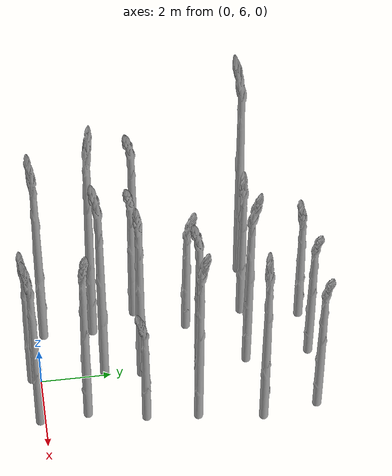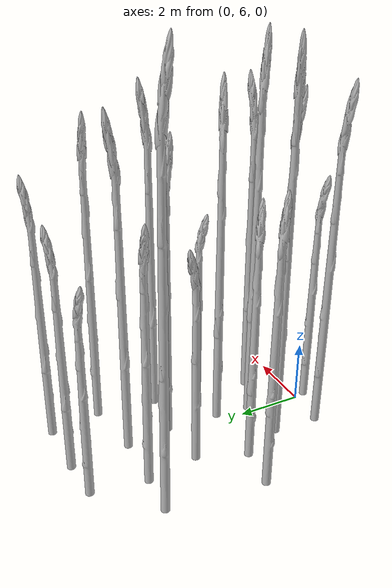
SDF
<sdf version="1.6">
 <world name="default">
  <model name="asparagus_49">
   <pose>-3.01257 8.94992 0 0 -0 -0.954125</pose>
   <static>1</static>
   <link name="asparagus_49">
    <visual name="visual">
     <geometry>
      <mesh><uri>model://Asparagus/meshes/asparagus.obj</uri><scale>0.3 0.3 0.417573</scale></mesh>
     </geometry>
    </visual>
    <collision name="collision">
     <geometry>
      <mesh><uri>model://Asparagus/meshes/asparagus.obj</uri><scale>0.3 0.3 0.417573</scale></mesh>
     </geometry>
    </collision>
   </link>
  </model>
  <model name="asparagus_55">
   <pose>-2.83045 11.9065 0 0 -0 -1.87174</pose>
   <static>1</static>
   <link name="asparagus_55">
    <visual name="visual">
     <geometry>
      <mesh><uri>model://Asparagus/meshes/asparagus.obj</uri><scale>0.3 0.3 0.596701</scale></mesh>
     </geometry>
    </visual>
    <collision name="collision">
     <geometry>
      <mesh><uri>model://Asparagus/meshes/asparagus.obj</uri><scale>0.3 0.3 0.596701</scale></mesh>
     </geometry>
    </collision>
   </link>
  </model>
  <model name="asparagus_103">
   <pose>-1.43077 6.18732 0 0 -0 -2.63352</pose>
   <static>1</static>
   <link name="asparagus_103">
    <visual name="visual">
     <geometry>
      <mesh><uri>model://Asparagus/meshes/asparagus.obj</uri><scale>0.3 0.3 0.511947</scale></mesh>
     </geometry>
    </visual>
    <collision name="collision">
     <geometry>
      <mesh><uri>model://Asparagus/meshes/asparagus.obj</uri><scale>0.3 0.3 0.511947</scale></mesh>
     </geometry>
    </collision>
   </link>
  </model>
  <model name="asparagus_106">
   <pose>-1.38305 7.67599 0 0 -0 2.59643</pose>
   <static>1</static>
   <link name="asparagus_106">
    <visual name="visual">
     <geometry>
      <mesh><uri>model://Asparagus/meshes/asparagus.obj</uri><scale>0.3 0.3 0.572787</scale></mesh>
     </geometry>
    </visual>
    <collision name="collision">
     <geometry>
      <mesh><uri>model://Asparagus/meshes/asparagus.obj</uri><scale>0.3 0.3 0.572787</scale></mesh>
     </geometry>
    </collision>
   </link>
  </model>
  <model name="asparagus_109">
   <pose>-1.75993 8.79615 0 0 -0 -0.703755</pose>
   <static>1</static>
   <link name="asparagus_109">
    <visual name="visual">
     <geometry>
      <mesh><uri>model://Asparagus/meshes/asparagus.obj</uri><scale>0.3 0.3 0.385033</scale></mesh>
     </geometry>
    </visual>
    <collision name="collision">
     <geometry>
      <mesh><uri>model://Asparagus/meshes/asparagus.obj</uri><scale>0.3 0.3 0.385033</scale></mesh>
     </geometry>
    </collision>
   </link>
  </model>
  <model name="asparagus_112">
   <pose>-1.25827 10.3732 0 0 -0 1.82256</pose>
   <static>1</static>
   <link name="asparagus_112">
    <visual name="visual">
     <geometry>
      <mesh><uri>model://Asparagus/meshes/asparagus.obj</uri><scale>0.3 0.3 0.329901</scale></mesh>
     </geometry>
    </visual>
    <collision name="collision">
     <geometry>
      <mesh><uri>model://Asparagus/meshes/asparagus.obj</uri><scale>0.3 0.3 0.329901</scale></mesh>
     </geometry>
    </collision>
   </link>
  </model>
  <model name="asparagus_115">
   <pose>-1.61625 11.9138 0 0 -0 3.06225</pose>
   <static>1</static>
   <link name="asparagus_115">
    <visual name="visual">
     <geometry>
      <mesh><uri>model://Asparagus/meshes/asparagus.obj</uri><scale>0.3 0.3 0.385038</scale></mesh>
     </geometry>
    </visual>
    <collision name="collision">
     <geometry>
      <mesh><uri>model://Asparagus/meshes/asparagus.obj</uri><scale>0.3 0.3 0.385038</scale></mesh>
     </geometry>
    </collision>
   </link>
  </model>
  <model name="asparagus_118">
   <pose>-1.32019 13.516 0 0 -0 -2.81183</pose>
   <static>1</static>
   <link name="asparagus_118">
    <visual name="visual">
     <geometry>
      <mesh><uri>model://Asparagus/meshes/asparagus.obj</uri><scale>0.3 0.3 0.318199</scale></mesh>
     </geometry>
    </visual>
    <collision name="collision">
     <geometry>
      <mesh><uri>model://Asparagus/meshes/asparagus.obj</uri><scale>0.3 0.3 0.318199</scale></mesh>
     </geometry>
    </collision>
   </link>
  </model>
  <model name="asparagus_163">
   <pose>-0.121048 5.72624 0 0 -0 -2.76701</pose>
   <static>1</static>
   <link name="asparagus_163">
    <visual name="visual">
     <geometry>
      <mesh><uri>model://Asparagus/meshes/asparagus.obj</uri><scale>0.3 0.3 0.368776</scale></mesh>
     </geometry>
    </visual>
    <collision name="collision">
     <geometry>
      <mesh><uri>model://Asparagus/meshes/asparagus.obj</uri><scale>0.3 0.3 0.368776</scale></mesh>
     </geometry>
    </collision>
   </link>
  </model>
  <model name="asparagus_166">
   <pose>0.047911 7.75407 0 0 -0 -0.964855</pose>
   <static>1</static>
   <link name="asparagus_166">
    <visual name="visual">
     <geometry>
      <mesh><uri>model://Asparagus/meshes/asparagus.obj</uri><scale>0.3 0.3 0.567252</scale></mesh>
     </geometry>
    </visual>
    <collision name="collision">
     <geometry>
      <mesh><uri>model://Asparagus/meshes/asparagus.obj</uri><scale>0.3 0.3 0.567252</scale></mesh>
     </geometry>
    </collision>
   </link>
  </model>
  <model name="asparagus_169">
   <pose>0.20927 8.82261 0 0 -0 -0.421395</pose>
   <static>1</static>
   <link name="asparagus_169">
    <visual name="visual">
     <geometry>
      <mesh><uri>model://Asparagus/meshes/asparagus.obj</uri><scale>0.3 0.3 0.512975</scale></mesh>
     </geometry>
    </visual>
    <collision name="collision">
     <geometry>
      <mesh><uri>model://Asparagus/meshes/asparagus.obj</uri><scale>0.3 0.3 0.512975</scale></mesh>
     </geometry>
    </collision>
   </link>
  </model>
  <model name="asparagus_172">
   <pose>0.259366 10.4203 0 0 -0 -1.05061</pose>
   <static>1</static>
   <link name="asparagus_172">
    <visual name="visual">
     <geometry>
      <mesh><uri>model://Asparagus/meshes/asparagus.obj</uri><scale>0.3 0.3 0.4499</scale></mesh>
     </geometry>
    </visual>
    <collision name="collision">
     <geometry>
      <mesh><uri>model://Asparagus/meshes/asparagus.obj</uri><scale>0.3 0.3 0.4499</scale></mesh>
     </geometry>
    </collision>
   </link>
  </model>
  <model name="asparagus_175">
   <pose>0.061259 11.948 0 0 -0 1.32698</pose>
   <static>1</static>
   <link name="asparagus_175">
    <visual name="visual">
     <geometry>
      <mesh><uri>model://Asparagus/meshes/asparagus.obj</uri><scale>0.3 0.3 0.492689</scale></mesh>
     </geometry>
    </visual>
    <collision name="collision">
     <geometry>
      <mesh><uri>model://Asparagus/meshes/asparagus.obj</uri><scale>0.3 0.3 0.492689</scale></mesh>
     </geometry>
    </collision>
   </link>
  </model>
  <model name="asparagus_178">
   <pose>0.02811 13.697 0 0 -0 0.556339</pose>
   <static>1</static>
   <link name="asparagus_178">
    <visual name="visual">
     <geometry>
      <mesh><uri>model://Asparagus/meshes/asparagus.obj</uri><scale>0.3 0.3 0.36408</scale></mesh>
     </geometry>
    </visual>
    <collision name="collision">
     <geometry>
      <mesh><uri>model://Asparagus/meshes/asparagus.obj</uri><scale>0.3 0.3 0.36408</scale></mesh>
     </geometry>
    </collision>
   </link>
  </model>
  <model name="asparagus_223">
   <pose>1.24247 5.79202 0 0 -0 -2.20762</pose>
   <static>1</static>
   <link name="asparagus_223">
    <visual name="visual">
     <geometry>
      <mesh><uri>model://Asparagus/meshes/asparagus.obj</uri><scale>0.3 0.3 0.474448</scale></mesh>
     </geometry>
    </visual>
    <collision name="collision">
     <geometry>
      <mesh><uri>model://Asparagus/meshes/asparagus.obj</uri><scale>0.3 0.3 0.474448</scale></mesh>
     </geometry>
    </collision>
   </link>
  </model>
  <model name="asparagus_226">
   <pose>1.30712 7.24962 0 0 -0 0.435844</pose>
   <static>1</static>
   <link name="asparagus_226">
    <visual name="visual">
     <geometry>
      <mesh><uri>model://Asparagus/meshes/asparagus.obj</uri><scale>0.3 0.3 0.499369</scale></mesh>
     </geometry>
    </visual>
    <collision name="collision">
     <geometry>
      <mesh><uri>model://Asparagus/meshes/asparagus.obj</uri><scale>0.3 0.3 0.499369</scale></mesh>
     </geometry>
    </collision>
   </link>
  </model>
  <model name="asparagus_229">
   <pose>1.44533 8.78681 0 0 -0 -2.0155</pose>
   <static>1</static>
   <link name="asparagus_229">
    <visual name="visual">
     <geometry>
      <mesh><uri>model://Asparagus/meshes/asparagus.obj</uri><scale>0.3 0.3 0.30947</scale></mesh>
     </geometry>
    </visual>
    <collision name="collision">
     <geometry>
      <mesh><uri>model://Asparagus/meshes/asparagus.obj</uri><scale>0.3 0.3 0.30947</scale></mesh>
     </geometry>
    </collision>
   </link>
  </model>
  <model name="asparagus_232">
   <pose>1.69013 10.376 0 0 -0 0.966322</pose>
   <static>1</static>
   <link name="asparagus_232">
    <visual name="visual">
     <geometry>
      <mesh><uri>model://Asparagus/meshes/asparagus.obj</uri><scale>0.3 0.3 0.501871</scale></mesh>
     </geometry>
    </visual>
    <collision name="collision">
     <geometry>
      <mesh><uri>model://Asparagus/meshes/asparagus.obj</uri><scale>0.3 0.3 0.501871</scale></mesh>
     </geometry>
    </collision>
   </link>
  </model>
  <model name="asparagus_235">
   <pose>1.77446 12.1455 0 0 -0 -3.12807</pose>
   <static>1</static>
   <link name="asparagus_235">
    <visual name="visual">
     <geometry>
      <mesh><uri>model://Asparagus/meshes/asparagus.obj</uri><scale>0.3 0.3 0.470849</scale></mesh>
     </geometry>
    </visual>
    <collision name="collision">
     <geometry>
      <mesh><uri>model://Asparagus/meshes/asparagus.obj</uri><scale>0.3 0.3 0.470849</scale></mesh>
     </geometry>
    </collision>
   </link>
  </model>
  <model name="asparagus_238">
   <pose>1.7044 13.734 0 0 -0 0.644701</pose>
   <static>1</static>
   <link name="asparagus_238">
    <visual name="visual">
     <geometry>
      <mesh><uri>model://Asparagus/meshes/asparagus.obj</uri><scale>0.3 0.3 0.399201</scale></mesh>
     </geometry>
    </visual>
    <collision name="collision">
     <geometry>
      <mesh><uri>model://Asparagus/meshes/asparagus.obj</uri><scale>0.3 0.3 0.399201</scale></mesh>
     </geometry>
    </collision>
   </link>
  </model>
 </world>
</sdf>
